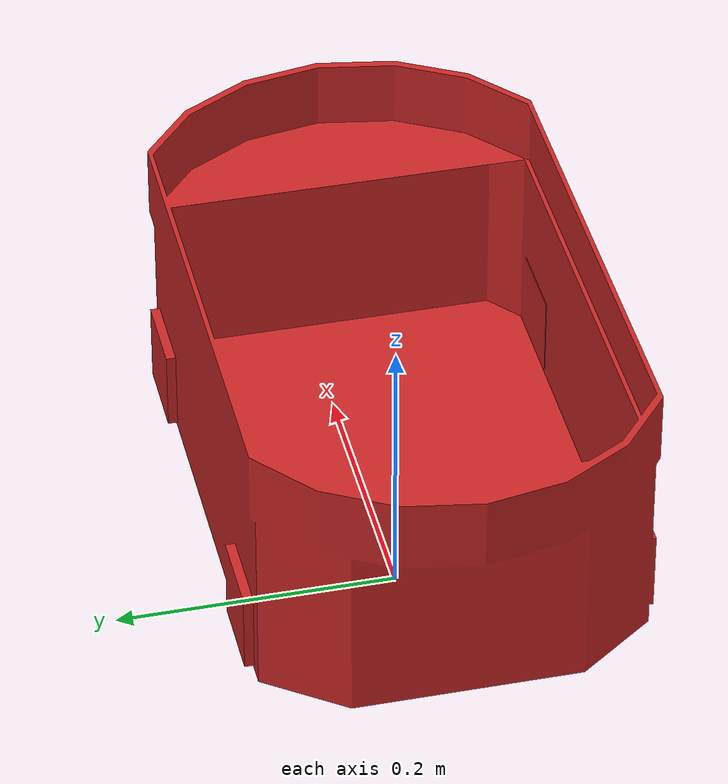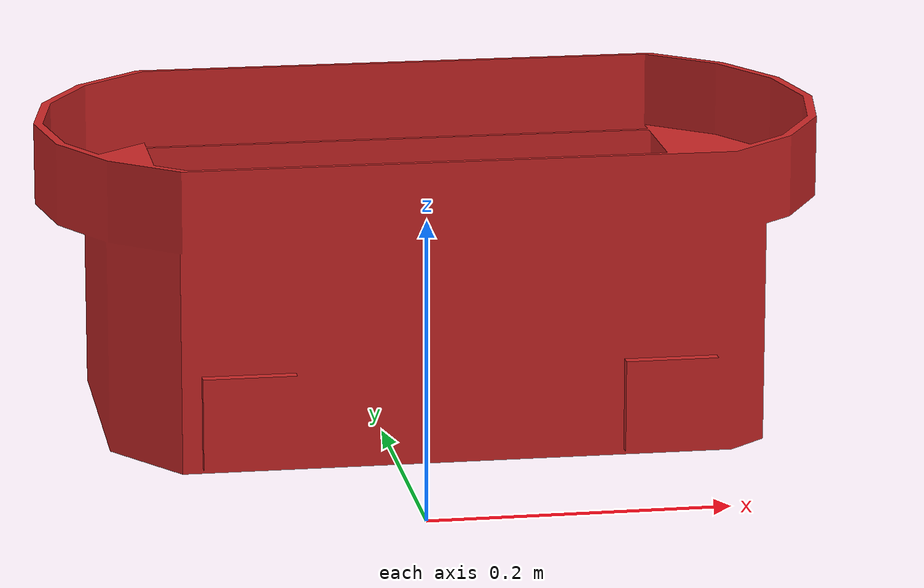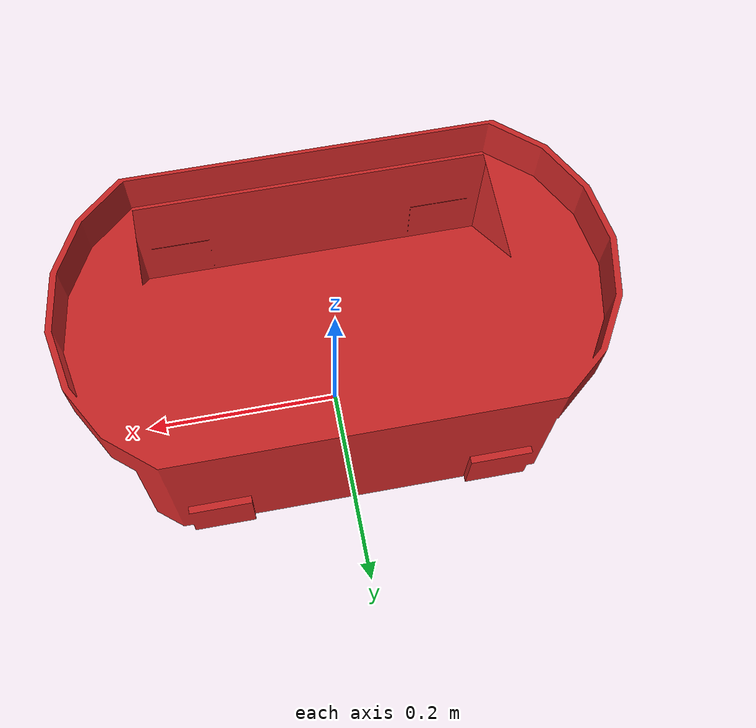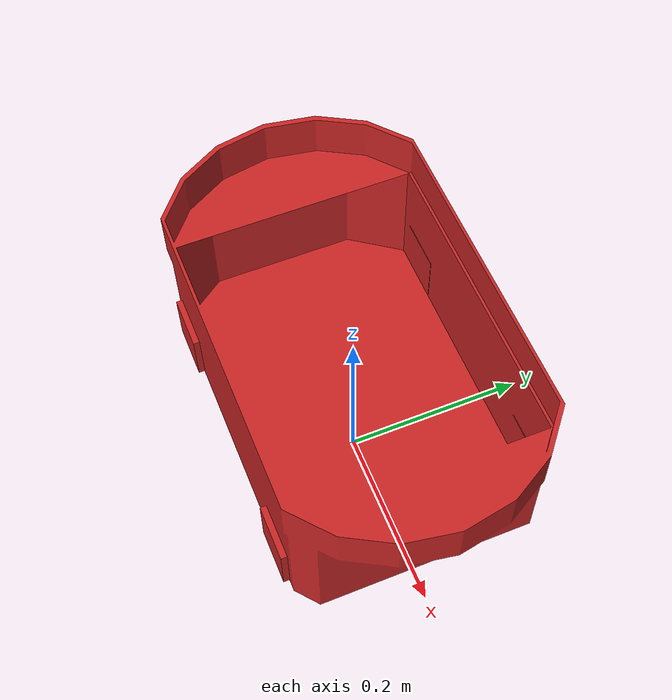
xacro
<?xml version="1.0"?>

<robot xmlns:sensor="http://playerstage.sourceforge.net/gazebo/xmlschema/#sensor"
       xmlns:controller="http://playerstage.sourceforge.net/gazebo/xmlschema/#controller"
       xmlns:interface="http://playerstage.sourceforge.net/gazebo/xmlschema/#interface"
       xmlns:xacro="http://ros.org/wiki/xacro"
name="pioneer3at">
<gazebo>
    <plugin name="gazebo_ros_control" filename="libgazebo_ros_control.so">
      <robotNamespace>/rrbot</robotNamespace>
      <robotSimType>gazebo_ros_control/DefaultRobotHWSim</robotSimType>
    </plugin>
  </gazebo>
<xacro:include filename="$(find description)/urdf/pioneer3at.gazebo" />

<!-- Chassis -->
	<link name="base_link">

		<inertial>
			<mass value="21.5"/> <!-- P3AT 18.6kg plus three batteries @ 2.4kg each  minus four wheels @ 1.4 kg ea and top plate @ 0.1 kg-->
			<origin xyz="0 -0.1 0.177"/>
			<inertia ixx="0.3338" ixy="0.0"     ixz="0.0"
				              iyy="0.4783"  iyz="0.0"
				                            izz="0.3338"/>
		</inertial>
		<visual name="base_visual">
			<origin xyz="0 0 0.177" rpy="0 0 0"/>
			<geometry name="pioneer_geom">
				<mesh filename="package://amr_robots_description/meshes/p3at_meshes/chassis.stl"/>
			</geometry>
			<material name="ChassisRed"/>
		</visual>
		<collision>
			<origin xyz="0 0 0.177" rpy="0 0 0"/>
				<geometry>
					<mesh filename="package://amr_robots_description/meshes/p3at_meshes/chassis.stl"/>
				</geometry>
		</collision>
	</link>
</robot>
